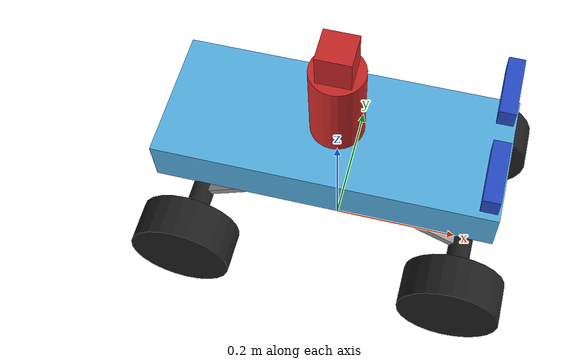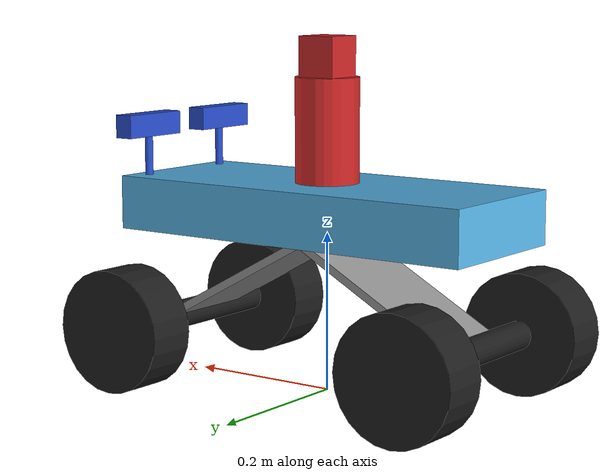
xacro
<?xml version="1.0"?>
<robot name="jetsoncar" xmlns:xacro="http://www.ros.org/wiki/xacro">

	<xacro:include filename="$(find jetsoncar_description)/urdf/parameters.xacro" />
	<xacro:include filename="$(find jetsoncar_description)/urdf/physical.xacro" />
	<xacro:include filename="$(find jetsoncar_description)/urdf/joints.xacro" />
	<xacro:include filename="$(find jetsoncar_description)/urdf/materials.xacro" />

	<link name="footprint"/>

	<link name="base_link">
		<visual>
			<material name="acrylic"/>
			<xacro:baseplate_geometry/>
		</visual>
	</link>
	<xacro:fixed_offset_joint parent="footprint" child="base_link" offset="0 0 ${baseplate_to_wheel_center+wheel_diameter/2}"/>

	<xacro:if value="${enable_imu}">
		<link name="imu">
			<visual>
				<material name="grey"/>
				<xacro:imu_geometry/>
			</visual>
		</link>
		<xacro:fixed_offset_joint parent="base_link" child="imu" offset="0 0 ${imu_height/2}"/> <!-- because origin is in the center, we want the IMU to stand on the baseplate -->
		<gazebo reference="imu">
		</gazebo>
	</xacro:if>

	<link name="front_mount">
		<visual>
			<material name="grey"/>
			<xacro:front_mount_geometry/>
		</visual>
	</link>
	<xacro:fixed_offset_joint parent="base_link" child="front_mount" offset="${front_to_rear_wheel_center/4} 0 -${baseplate_to_wheel_center/2}"/>

	<link name="rear_mount">
		<visual>
			<material name="grey"/>
			<xacro:rear_mount_geometry/>
		</visual>
	</link>
	<xacro:fixed_offset_joint parent="base_link" child="rear_mount" offset="-${front_to_rear_wheel_center/4} 0 -${baseplate_to_wheel_center/2}"/>

	<link name="front_shaft">
		<visual>
			<material name="black"/>
			<xacro:shaft_geometry/>
		</visual>
	</link>
	<xacro:fixed_offset_joint parent="front_mount" child="front_shaft" offset="${front_to_rear_wheel_center/4} 0 -${baseplate_to_wheel_center/2}"/>

	<link name="rear_shaft">
		<visual>
			<material name="black"/>
			<xacro:shaft_geometry/>
		</visual>
	</link>
	<xacro:fixed_offset_joint parent="rear_mount" child="rear_shaft" offset="-${front_to_rear_wheel_center/4} 0 -${baseplate_to_wheel_center/2}"/>

	<link name="front_right_hinge">
		<visual>
			<material name="white"/>
			<xacro:hinge_geometry/>
		</visual>
	</link>
	<xacro:hinge_joint parent="front_shaft" child="front_right_hinge" offset="0 -${left_to_right_wheel_center/2} 0"/>

	<link name="front_left_hinge">
		<visual>
			<material name="white"/>
			<xacro:hinge_geometry/>
		</visual>
	</link>
	<xacro:hinge_joint parent="front_shaft" child="front_left_hinge" offset="0 ${left_to_right_wheel_center/2} 0"/>

	<link name="front_right_wheel">
		<visual>
			<material name="black"/>
			<xacro:wheel_geometry/>
		</visual>
	</link>
	<xacro:wheel_joint parent="front_right_hinge" child="front_right_wheel" offset="0 0 0"/>

	<link name="front_left_wheel">
		<visual>
			<material name="black"/>
			<xacro:wheel_geometry/>
		</visual>
	</link>
	<xacro:wheel_joint parent="front_left_hinge" child="front_left_wheel" offset="0 0 0"/>

	<link name="rear_right_wheel">
		<visual>
			<material name="black"/>
			<xacro:wheel_geometry/>
		</visual>
	</link>
	<xacro:wheel_joint parent="rear_shaft" child="rear_right_wheel" offset="0 -${left_to_right_wheel_center/2} 0"/>

	<link name="rear_left_wheel">
		<visual>
			<material name="black"/>
			<xacro:wheel_geometry/>
		</visual>
	</link>
	<xacro:wheel_joint parent="rear_shaft" child="rear_left_wheel" offset="0 ${left_to_right_wheel_center/2} 0"/>

	<!-- Sensors -->
	<xacro:if value="${enable_front_camera}">
		<link name="camera_mount">
			<visual>
				<material name="blue"/>
				<xacro:camera_mount_geometry/>
			</visual>
		</link>
		<xacro:fixed_offset_joint parent="base_link" child="camera_mount" offset="${baseplate_length/2-baseplate_frontedge_to_camera} 0 ${baseplate_thickness}"/>

		<link name="camera">
			<visual>
				<material name="blue"/>
				<xacro:camera_geometry/>
			</visual>
		</link>
		<xacro:fixed_offset_joint parent="camera_mount" child="camera" offset="0 0 ${camera_mount_height+camera_height/2}"/>
	</xacro:if>

	<xacro:if value="${enable_dual_camera}">
		<link name="left_camera_mount">
			<visual>
				<material name="blue"/>
				<xacro:camera_mount_geometry/>
			</visual>
		</link>
		<xacro:fixed_offset_joint parent="base_link" child="left_camera_mount" offset="${baseplate_length/2-baseplate_frontedge_to_camera} ${camera_disparity/2} ${baseplate_thickness}"/>

		<link name="left_camera">
			<visual>
				<material name="blue"/>
				<xacro:camera_geometry/>
			</visual>
		</link>
		<xacro:fixed_offset_joint parent="left_camera_mount" child="left_camera" offset="0 0 ${camera_mount_height+camera_height/2}"/>

		<link name="right_camera_mount">
			<visual>
				<material name="blue"/>
				<xacro:camera_mount_geometry/>
			</visual>
		</link>
		<xacro:fixed_offset_joint parent="base_link" child="right_camera_mount" offset="${baseplate_length/2-baseplate_frontedge_to_camera} -${camera_disparity/2} ${baseplate_thickness}"/>

		<link name="right_camera">
			<visual>
				<material name="blue"/>
				<xacro:camera_geometry/>
			</visual>
		</link>
		<xacro:fixed_offset_joint parent="right_camera_mount" child="right_camera" offset="0 0 ${camera_mount_height+camera_height/2}"/>
	</xacro:if>

	<xacro:if value="${enable_lidar}">
		<link name="lidar_mount">
			<visual>
				<material name="red"/>
				<xacro:lidar_mount_geometry/>
			</visual>
		</link>
		<xacro:fixed_offset_joint parent="base_link" child="lidar_mount" offset="0 0 ${baseplate_thickness}"/>

		<link name="lidar">
			<visual>
				<material name="red"/>
				<xacro:lidar_geometry/>
			</visual>
		</link>
		<xacro:fixed_offset_joint parent="lidar_mount" child="lidar" offset="0 0 ${lidar_mount_height+lidar_height/2}"/>
	</xacro:if>

	<xacro:if value="${enable_range_sensors}">
		<link name="ranger_front_left">
			<visual>
				<material name="white"/>
				<xacro:ranger_geometry/>
			</visual>
		</link>
		<xacro:fixed_offset_joint parent="base_link" child="ranger_front_left" offset="${baseplate_length/2} -${camera_disparity/2} ${baseplate_thickness/2}"/>

		<link name="ranger_front_right">
			<visual>
				<material name="white"/>
				<xacro:ranger_geometry/>
			</visual>
		</link>
		<xacro:fixed_offset_joint parent="base_link" child="ranger_front_right" offset="${baseplate_length/2} ${camera_disparity/2} ${baseplate_thickness/2}"/>
	</xacro:if>

    <xacro:if value="${enable_realsense}">
        <!-- Add realsense camera link -->
        <link name="realsense_camera_link">
            <visual>
                    <origin rpy="0 0 0" xyz="0 0 0"/>
                    <geometry>
                        <mesh filename="package://jetsoncar_description/models/realsense_camera/meshes/realsense.dae"/>
                    </geometry>
            </visual>
        </link>
        <xacro:fixed_offset_joint_rpy parent="base_link" child="realsense_camera_link" offset="${baseplate_length/2-baseplate_frontedge_to_camera} 0 ${baseplate_thickness+camera_mount_height+camera_height/2}" rpy="0 0 0" />
    </xacro:if>
</robot>

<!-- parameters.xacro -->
<robot name="jetsoncar" xmlns:xacro="http://www.ros.org/wiki/xacro">

	<!-- X axis direction is forward, Y axis direction is left -->

    <!-- Sensors related properties -->
    <xacro:property name="enable_lidar" value="true" />
    <xacro:property name="enable_realsense" value="false" />
    <xacro:property name="enable_range_sensors" value="false" />
    <xacro:property name="enable_dual_camera" value="true" />
    <xacro:property name="enable_front_camera" value="false" />
    <xacro:property name="enable_imu" value="true" />

	<!-- IMU related properties -->
	<xacro:property name="imu_width" value="0.05" />
	<xacro:property name="imu_length" value="0.05" />
	<xacro:property name="imu_height" value="0.03" />

	<!-- Wheel related properties -->
	<xacro:property name="wheel_diameter" value="0.155" />
	<xacro:property name="wheel_thickness" value="0.064" />
	<xacro:property name="wheel_weight" value="0.500" />

	<!-- suspension stiffness, damping, and limits -->
	<xacro:property name="susp_travel" value="${wheel_diameter/2}"/>
	<xacro:property name="susp_lower" value="${-susp_travel/2}"/>
	<xacro:property name="susp_upper" value="${susp_travel/2}"/>
	<xacro:property name="susp_damping" value="70"/>
	<xacro:property name="susp_stiffness" value="5"/>
	<xacro:property name="susp_spring_center" value="0.05"/>

	<!-- RC car physical layout -->
	<xacro:property name="front_to_rear_wheel_center" value="0.42" />
	<xacro:property name="left_to_right_wheel_center" value="0.285" />
	<xacro:property name="baseplate_to_wheel_center" value="0.118" />

	<!-- Baseplate related properties -->
	<xacro:property name="baseplate_width" value="0.20" />
	<xacro:property name="baseplate_length" value="0.50" />
	<xacro:property name="baseplate_thickness" value="0.0675" />
	<xacro:property name="baseplate_weight" value="2.000" />

	<!-- Shaft and mount related properties -->
	<xacro:property name="mount_weight" value="0.500" />
	<xacro:property name="shaft_weight" value="0.100" />

	<!-- Camera related properties -->
	<xacro:property name="camera_width" value="0.094" />
	<xacro:property name="camera_height" value="0.029" />
	<xacro:property name="camera_depth" value="0.024" />
	<xacro:property name="camera_weight" value="0.162" />
	<xacro:property name="baseplate_frontedge_to_camera" value="0.02" />
	<xacro:property name="camera_mount_height" value="0.05" />
	<xacro:property name="camera_mount_diameter" value="0.01" />
	<xacro:property name="camera_disparity" value="0.14" />

	<!-- LiDAR related properties -->
	<xacro:property name="lidar_width" value="0.05" />
	<xacro:property name="lidar_length" value="0.05" />
	<xacro:property name="lidar_height" value="0.05" />
	<xacro:property name="lidar_weight" value="0.200" />
	<xacro:property name="lidar_mount_diameter" value="0.08" />
	<xacro:property name="lidar_mount_height" value="0.13" />

	<!-- Range sensor related properties -->
	<xacro:property name="ranger_width" value="0.03" />
	<xacro:property name="ranger_length" value="0.01" />
	<xacro:property name="ranger_height" value="0.02" />
	<xacro:property name="ranger_weight" value="0.050" />

</robot>

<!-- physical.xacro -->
<robot name="jetsoncar" xmlns:xacro="http://www.ros.org/wiki/xacro">

	<!-- X axis direction is forward, Y axis direction is left -->
	<xacro:include filename="$(find jetsoncar_description)/urdf/parameters.xacro" />

	<!-- IMU -->
	<xacro:macro name="imu_geometry">
		<origin xyz="0 0 0" rpy="0 0 0" /> <!-- origin (0,0,0) is in the center of the box -->
		<geometry>
			<box size="${imu_length} ${imu_width} ${imu_height}"/> <!-- 50x50x30 mm, Please confirm against 3D drawings -->
		</geometry>
	</xacro:macro>
	<xacro:macro name="imu_inertial">
		<origin xyz="0 0 0" rpy="0 0 0" /> <!-- origin (0,0,0) is in the center of the box -->
		<xacro:box_inertial mass="0.010" length="${imu_length}" width="${imu_width}" height="${imu_height}" /> <!-- 10 grams -->
	</xacro:macro>

	<!-- Baseplate -->
	<xacro:macro name="baseplate_geometry">
		<origin xyz="0 0 ${baseplate_thickness/2}" rpy="0 0 0" /> <!-- origin (0,0,0) is in the center of the box, so place the origin of this in the bottom of baseplate -->
		<geometry>
			<box size="${baseplate_length} ${baseplate_width} ${baseplate_thickness}"/> <!-- 50x20x6.75 cm, X-axis is front of vehicle -->
		</geometry>
	</xacro:macro>
	<xacro:macro name="baseplate_inertial">
		<origin xyz="0 0 ${baseplate_thickness/2}" rpy="0 0 0" /> <!-- origin (0,0,0) is in the center of the box, so place the origin of this in the bottom of baseplate -->
		<xacro:box_inertial mass="${baseplate_weight}" length="${baseplate_length}" width="${baseplate_width}" height="${baseplate_thickness}" />
	</xacro:macro>

	<!-- Mount -->
	<xacro:macro name="front_mount_geometry">
		<origin xyz="0 0 0" rpy="0 0.5 0" /> <!-- origin (0,0,0) is in the center of the box -->
		<geometry>
			<box size="0.24 0.12 0.01"/>
		</geometry>
	</xacro:macro>
	<xacro:macro name="rear_mount_geometry">
		<origin xyz="0 0 0" rpy="0 -0.5 0" /> <!-- origin (0,0,0) is in the center of the box -->
		<geometry>
			<box size="0.24 0.12 0.01"/>
		</geometry>
	</xacro:macro>
	<xacro:macro name="front_mount_inertial">
		<origin xyz="0 0 0" rpy="0 0.5 0" /> <!-- origin (0,0,0) is in the center of the box -->
		<xacro:box_inertial mass="${mount_weight}" length="0.24" width="0.12" height="0.01" />
	</xacro:macro>
	<xacro:macro name="rear_mount_inertial">
		<origin xyz="0 0 0" rpy="0 -0.5 0" /> <!-- origin (0,0,0) is in the center of the box -->
		<xacro:box_inertial mass="${mount_weight}" length="0.24" width="0.12" height="0.01" />
	</xacro:macro>

	<!-- Shaft -->
	<xacro:macro name="shaft_geometry">
		<origin xyz="0 0 0" rpy="1.570796327 0 0" /> <!-- origin (0,0,0) is in the center of the cylinder -->
		<geometry>
			<cylinder length="${left_to_right_wheel_center}" radius="0.018"/> <!-- confirm length between wheels -->
		</geometry>
	</xacro:macro>
	<xacro:macro name="shaft_inertial">
		<origin xyz="0 0 0" rpy="1.570796327 0 0" /> <!-- origin (0,0,0) is in the center of the cylinder -->
		<xacro:cylinder_inertial mass="${shaft_weight}" radius="0.018" length="${left_to_right_wheel_center}" />
	</xacro:macro>

	<!-- Hinge -->
	<xacro:macro name="hinge_geometry">
		<origin xyz="0 0 0" rpy="0 0 0" />
		<geometry>
			<sphere radius="0.015"/>
		</geometry>
	</xacro:macro>
	<xacro:macro name="hinge_inertial">
		<origin xyz="0 0 0" rpy="0 0 0" />
		<mass value="0.05" />
		<inertia ixx="1e-5" ixy="0" ixz="0" iyy="1e-5" iyz="0" izz="1e-5" /> <!-- small inertia -->
	</xacro:macro>

	<!-- Wheel -->
	<xacro:macro name="wheel_geometry">
		<origin xyz="0 0 0" rpy="1.570796327 0 0" /> <!-- origin (0,0,0) is in the center of the cylinder -->
		<geometry>
			<cylinder length="${wheel_thickness}" radius="${wheel_diameter/2}"/>
		</geometry>
	</xacro:macro>
	<xacro:macro name="wheel_inertial">
		<origin xyz="0 0 0" rpy="1.570796327 0 0" /> <!-- origin (0,0,0) is in the center of the cylinder -->
		<xacro:cylinder_inertial mass="${wheel_weight}" radius="${wheel_diameter/2}" length="${wheel_thickness}" />
	</xacro:macro>

	<!-- Camera -->
	<xacro:macro name="camera_mount_geometry">
		<origin xyz="0 0 ${camera_mount_height/2}" rpy="0 0 0" /> <!-- origin (0,0,0) is in the center of the box -->
		<geometry>
			<cylinder length="${camera_mount_height}" radius="${camera_mount_diameter/2}"/> <!-- confirm length between wheels -->
		</geometry>
	</xacro:macro>
	<xacro:macro name="camera_mount_inertial">
		<origin xyz="0 0 0" rpy="0 0 0" /> <!-- origin (0,0,0) is in the center of the box -->
		<mass value="0.005" /> <!-- 5 grams -->
		<inertia ixx="1e-6" ixy="0" ixz="0" iyy="1e-6" iyz="0" izz="1e-6" /> <!-- small inertia -->
	</xacro:macro>

	<xacro:macro name="camera_geometry">
		<origin xyz="0 0 0" rpy="0 0 0" /> <!-- origin (0,0,0) is in the center of the box -->
		<geometry>
			<box size="${camera_depth} ${camera_width} ${camera_height}"/>
		</geometry>
	</xacro:macro>
	<xacro:macro name="camera_inertial">
		<origin xyz="0 0 0" rpy="0 0 0" /> <!-- origin (0,0,0) is in the center of the box -->
		<xacro:box_inertial mass="${camera_weight}" length="${camera_depth}" width="${camera_width}" height="${camera_height}" />
	</xacro:macro>

	<!-- LiDAR -->
	<xacro:macro name="lidar_mount_geometry">
		<origin xyz="0 0 ${lidar_mount_height/2}" rpy="0 0 0" /> <!-- origin (0,0,0) is in the center of the box -->
		<geometry>
			<cylinder length="${lidar_mount_height}" radius="${lidar_mount_diameter/2}"/>
		</geometry>
	</xacro:macro>
	<xacro:macro name="lidar_mount_inertial">
		<origin xyz="0 0 0" rpy="0 0 0" /> <!-- origin (0,0,0) is in the center of the box -->
		<mass value="0.020" />
		<inertia ixx="1e-7" ixy="0" ixz="0" iyy="1e-7" iyz="0" izz="1e-7" />
	</xacro:macro>

	<xacro:macro name="lidar_geometry">
		<origin xyz="0 0 0" rpy="0 0 0" /> <!-- origin (0,0,0) is in the center of the box -->
		<geometry>
			<box size="${lidar_length} ${lidar_width} ${lidar_height}"/>
		</geometry>
	</xacro:macro>
	<xacro:macro name="lidar_inertial">
		<origin xyz="0 0 0" rpy="0 0 0" /> <!-- origin (0,0,0) is in the center of the box -->
		<xacro:box_inertial mass="${lidar_weight}" length="${lidar_length}" width="${lidar_width}" height="${lidar_height}" />
	</xacro:macro>

	<!-- Range sensor -->
	<xacro:macro name="ranger_geometry">
		<origin xyz="0 0 0" rpy="0 0 0" /> <!-- origin (0,0,0) is in the center of the box -->
		<geometry>
			<box size="${ranger_length} ${ranger_width} ${ranger_height}"/>
		</geometry>
	</xacro:macro>
	<xacro:macro name="ranger_inertial">
		<origin xyz="0 0 0" rpy="0 0 0" /> <!-- origin (0,0,0) is in the center of the box -->
		<xacro:box_inertial mass="${ranger_weight}" length="${ranger_length}" width="${ranger_width}" height="${ranger_height}" />
	</xacro:macro>

</robot>

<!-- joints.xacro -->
<robot name="jetsoncar" xmlns:xacro="http://www.ros.org/wiki/xacro">

	<xacro:include filename="$(find jetsoncar_description)/urdf/parameters.xacro" />

	<xacro:macro name="fixed_offset_joint" params="parent child offset">
		<joint name="${parent}_to_${child}" type="fixed">
			<parent link="${parent}"/>
			<child link="${child}"/>
			<origin xyz="${offset}" rpy="0 0 0" /> <!-- offset from parent to child, so with direction based in parent frame -->
		</joint>
	</xacro:macro>

	<xacro:macro name="fixed_offset_joint_rpy" params="parent child offset rpy">
		<joint name="${parent}_to_${child}" type="fixed">
			<parent link="${parent}"/>
			<child link="${child}"/>
			<origin xyz="${offset}" rpy="${rpy}" /> <!-- offset from parent to child, so with direction based in parent frame -->
		</joint>
	</xacro:macro>

	<xacro:macro name="dampener_joint" params="parent child offset">
		<joint name="${parent}_to_${child}" type="prismatic">
			<parent link="${parent}"/>
			<child link="${child}"/>
			<origin xyz="${offset}" rpy="0 0 0" /> <!-- offset from parent to child, so with direction based in parent frame -->
			<axis xyz="0 0 -1"/> <!-- suspension works up and down -->
			<limit lower="${susp_lower}" upper="${susp_upper}" effort="0" velocity="0"/>
		        <dynamics damping="${susp_damping}" spring_stiffness="${susp_stiffness}" spring_reference="${susp_spring_center}"/>
			<physics>
				<ode>
					<implicit_spring_damper>0</implicit_spring_damper>
				</ode>
			</physics>
		</joint>
	</xacro:macro>

	<xacro:macro name="hinge_joint" params="parent child offset">
		<joint name="${child}_joint" type="revolute"> <!-- revolute is a joint with a range limited motion around its' axis -->
			<parent link="${parent}"/>
			<child link="${child}"/>
			<origin xyz="${offset}" rpy="0 0 0" /> <!-- offset from parent to child, so with direction based in parent frame -->
			<axis xyz="0 0 1"/>
	    		<limit lower="-${steering_wheel_angle_limit}" upper="${steering_wheel_angle_limit}" effort="1" velocity="10"/> <!-- effort is similar to torque/acceleration -->
			<!-- friction - The physical static friction. For prismatic joints, the units are Newtons. For revolving joints, the units are Newton meters. -->
			<!-- damping - The physical damping value. For prismatic joints, the units are Newton seconds per meter. For revolving joints, Newton meter secons per radian. -->
			<dynamics friction="0.0" damping="0.1"/>
		</joint>
	</xacro:macro>

	<xacro:macro name="wheel_joint" params="parent child offset">
		<joint name="${child}_joint" type="continuous"> <!-- continuous is a joint of continous motion around its' axis -->
			<parent link="${parent}"/>
			<child link="${child}"/>
			<origin xyz="${offset}" rpy="0 0 0" /> <!-- offset from parent to child, so with direction based in parent frame -->
			<axis xyz="0 1 0"/>
			<!-- friction - The physical static friction. For prismatic joints, the units are Newtons. For revolving joints, the units are Newton meters. -->
			<!-- damping - The physical damping value. For prismatic joints, the units are Newton seconds per meter. For revolving joints, Newton meter secons per radian. -->
			<limit effort="10" velocity="100"/>
		</joint>
	</xacro:macro>

</robot>
